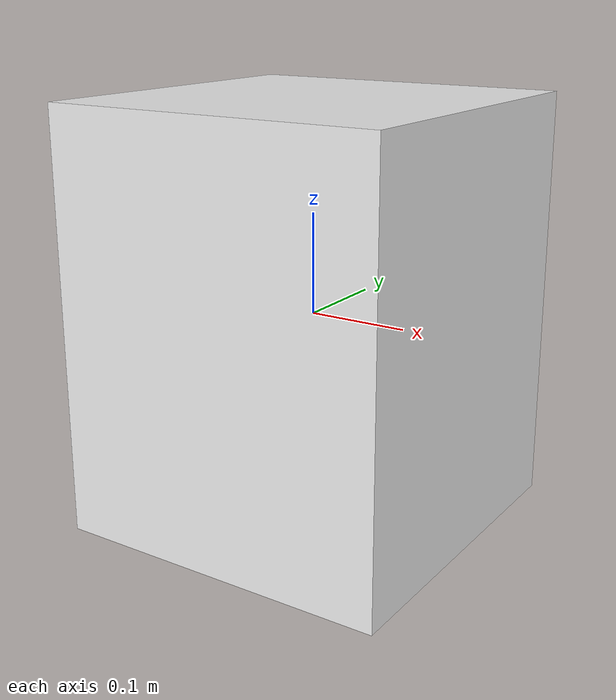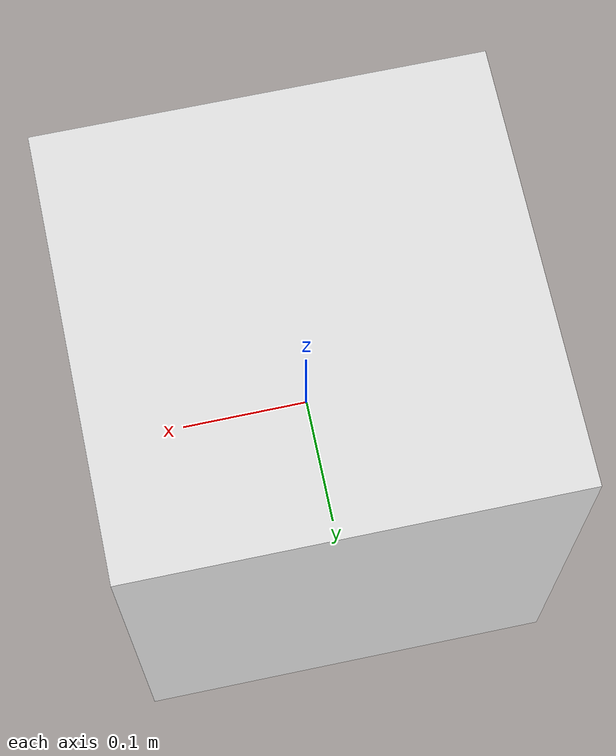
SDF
<?xml version="1.0" ?>
<sdf version='1.5'>
  <model name="generic_obstacle">
      <static>0</static>
      <link name='link'>
        <inertial>
          <mass>10.0</mass>
        </inertial>
        <collision name='collision'>
          <geometry>
            <box>
              <size>0.34 0.34 0.42</size>
            </box>
          </geometry>
          <surface>
            <friction>
              <ode>
                <mu>5.0</mu>
                <mu2>5.0</mu2>
              </ode>
            </friction>
            <contact>
              <ode>
                <kp>1000000.0</kp>
                <kd>100.0</kd>
                <max_vel>1.0</max_vel>
                <min_depth>0.002</min_depth>
              </ode>
            </contact>
          </surface>
        </collision>
        <visual name='visual'>
          <geometry>
            <box>
              <size>0.34 0.34 0.42</size>
            </box>
          </geometry>
          <material>
            <script>
              <uri>file://media/materials/scripts/gazebo.material</uri>
              <name>Gazebo/White</name>
            </script>
          </material>
        </visual>
        <velocity_decay>
          <linear>0.000000</linear>
          <angular>0.000000</angular>
        </velocity_decay>
        <self_collide>0</self_collide>
        <kinematic>0</kinematic>
        <gravity>1</gravity>
      </link>
  </model>
</sdf>
